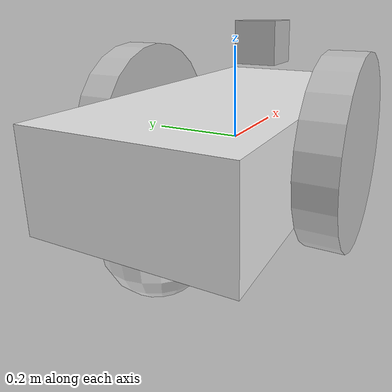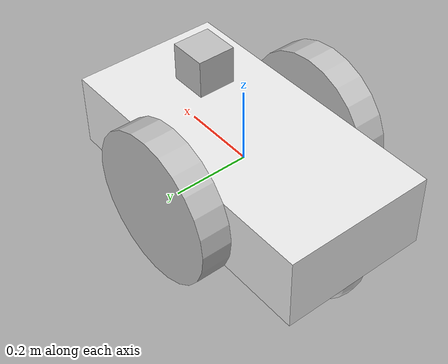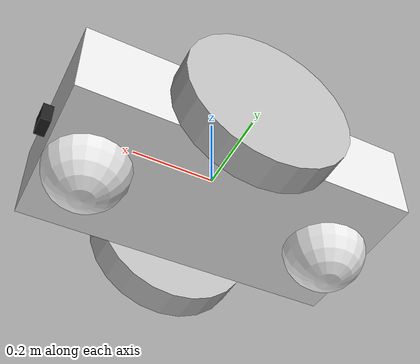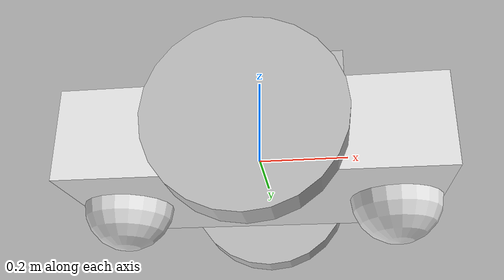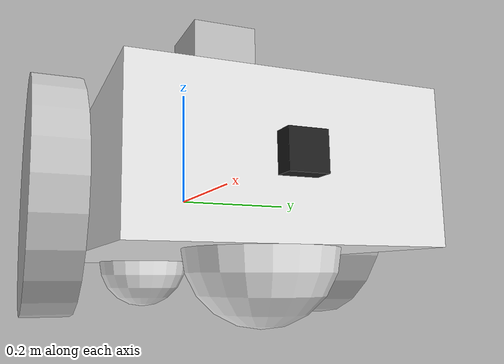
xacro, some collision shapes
<?xml version='1.0'?>

<robot name="mini_robot" xmlns:xacro="http://www.ros.org/wiki/xacro">
<xacro:include filename="$(find my_robot)/urdf/mini_robot.gazebo" />
  <link name="robot_footprint"></link>

  <joint name="robot_footprint_joint" type="fixed">
    <origin xyz="0 0 0" rpy="0 0 0" />
    <parent link="robot_footprint"/>
    <child link="chassis" />
  </joint>

  <link name='chassis'>
    <pose>0 0 0.2 0 0 0</pose>

    <inertial>
      <mass value="20.0"/>
      <origin xyz="0.0 0 0" rpy=" 0 0 0"/>
      <inertia
          ixx="3.9" ixy="0" ixz="0"
          iyy="3.9" iyz="0"
          izz="3.9"
      />
    </inertial>

    <collision name='collision'>
      <origin xyz="0 0 0" rpy=" 0 0 0"/>
      <geometry>
        <box size=".8 .4 .2"/>
      </geometry>
    </collision>

    <visual name='chassis_visual'>
      <origin xyz="0 0 0" rpy=" 0 0 0"/>
      <geometry>
        <box size=".8 .4 .2"/>
      </geometry>
    </visual>

    <collision name='back_caster_collision'>
      <origin xyz="-0.3 0 -0.099" rpy=" 0 0 0"/>
      <geometry>
        <sphere radius="0.1"/>
      </geometry>
    </collision>

    <visual name='back_caster_visual'>
      <origin xyz="-0.3 0 -0.1" rpy=" 0 0 0"/>
      <geometry>
        <sphere radius="0.1"/>
      </geometry>
    </visual>

    <collision name='front_caster_collision'>
      <origin xyz="0.3 0 -0.099" rpy=" 0 0 0"/>
      <geometry>
        <sphere radius="0.1"/>
      </geometry>
    </collision>

    <visual name='front_caster_visual'>
      <origin xyz="0.3 0 -0.1" rpy=" 0 0 0"/>
      <geometry>
        <sphere radius="0.1"/>
      </geometry>
    </visual>

  </link>
<link name="right_wheel">
    <inertial>
      <origin xyz="0 0.0 0" rpy="0 1.5707 1.5707"/>
      <mass value="5"/>
      <inertia ixx="0.1" ixy="0" ixz="0" iyy="0.1" iyz="0" izz="0.1"/>
    </inertial>
    <visual>
      <origin xyz="0 0 0" rpy="0 1.5707 1.5707"/>
      <geometry>
        <cylinder length="0.08" radius="0.2"/>
      </geometry>
      <material name="">
        <color rgba="0.75294 0.75294 0.75294 1"/>
      </material>
    </visual>
    <collision>
      <origin xyz="0 0 0" rpy="0 1.5707 1.5707"/>
      <geometry>
        <cylinder length="0.08" radius="0.2"/>
      </geometry>
    </collision>
  </link>
<joint type="continuous" name="right_wheel_hinge">
    <origin xyz="0 0.24 0" rpy="0 0 0"/>
    <child link="right_wheel"/>
    <parent link="chassis"/>
    <axis xyz="0 1 0" rpy="0 0 0"/>
    <limit effort="10000" velocity="1000"/>
    <dynamics damping="1.0" friction="1.0"/>
  </joint>

<link name="left_wheel">
    <inertial>
      <origin xyz="0 0 0" rpy="0 1.5707 1.5707"/>
      <mass value="5"/>
      <inertia ixx="0.1" ixy="0" ixz="0" iyy="0.1" iyz="0" izz="0.1"/>
    </inertial>
    <visual>
      <origin xyz="0 0 0" rpy="0 1.5707 1.5707"/>
      <geometry>
        <cylinder length="0.08" radius="0.2"/>
      </geometry>
      <material name="">
        <color rgba="0.75294 0.75294 0.75294 1"/>
      </material>
    </visual>
    <collision>
      <origin xyz="0 0 0" rpy="0 1.5707 1.5707"/>
      <geometry>
        <cylinder length="0.08" radius="0.2"/>
      </geometry>
    </collision>
  </link>
<joint type="continuous" name="left_wheel_hinge">
    <origin xyz="0 -0.24 0" rpy="0 0 0"/>
    <child link="left_wheel"/>
    <parent link="chassis"/>
    <axis xyz="0 1 0" rpy="0 0 0"/>
    <limit effort="10000" velocity="1000"/>
    <dynamics damping="1.0" friction="1.0"/>
  </joint>

<link name="hokuyo">
    <inertial>
      <origin xyz="0 0 0" rpy="0 0 0"/>
      <mass value="1e-5"/>
      <inertia ixx="1e-6" ixy="0" ixz="0" iyy="1e-6" iyz="0" izz="1e-6"/>
    </inertial>
    <visual>
      <origin xyz="0 0 0" rpy="0 0 0"/>
      <geometry>
        <mesh filename="package://my_robot/meshes/hokuyo.dae"/>
      </geometry>
      <material name="">
        <color rgba="0.75294 0.75294 0.75294 1"/>
      </material>
    </visual>
    <collision>
      <origin xyz="0 0 0" rpy="0 0 0"/>
      <geometry>
        <box size="0.1 0.1 0.1"/>
      </geometry>
    </collision>
  </link>
<joint type="fixed" name="hokuyo_joint">
    <origin xyz="0.15 0 0.2" rpy="0 0 0"/>
    <child link="hokuyo"/>
    <parent link="chassis"/>
    <axis xyz="0 1 0" rpy="0 0 0"/>
    <limit effort="10000" velocity="1000"/>
    <dynamics damping="1.0" friction="1.0"/>
  </joint>

<link name="camera">
    <inertial>
      <origin xyz="0 0 0" rpy="0 0 0"/>
      <mass value="0.1"/>
      <inertia ixx="1e-6" ixy="0" ixz="0" iyy="1e-6" iyz="0" izz="1e-6"/>
	<box_inertia m="0.1" x="0.05" y="0.05" z="0.05"/>
    </inertial>
    <visual>
      <origin xyz="0 0 0" rpy="0 0 0"/>
      <geometry>
        <box size="0.05 0.05 0.05"/>
      </geometry>
    </visual>
    <collision>
      <origin xyz="0 0 0" rpy="0 0 0"/>
      <geometry>
        <box size="0.05 0.05 0.05"/>
      </geometry>
    </collision>
  </link>
<joint type="fixed" name="camera_joint">
    <origin xyz="0.4 0 0" rpy="0 0 0"/>
    <child link="camera"/>
    <parent link="chassis"/>
    <axis xyz="0 1 0" rpy="0 0 0"/>
    <limit effort="10000" velocity="1000"/>
    <dynamics damping="1.0" friction="1.0"/>
  </joint>

  <link name="camera_optical">
  </link>

<joint name="camera_optical_joint" type="fixed">
    <origin xyz="0 0 0" rpy="-1.5707 0 -1.5707"/>
    <parent link="camera"/>
    <child link="camera_optical"/>
  </joint>

<gazebo reference="left_wheel">
    <material>Gazebo/Black</material>
</gazebo>
 <gazebo reference="right_wheel">
    <material>Gazebo/Black</material>
</gazebo>
<gazebo reference="chassis">
    <material>Gazebo/White</material>
</gazebo>
<gazebo reference="camera">
    <material>Gazebo/Black</material>
</gazebo>
</robot>
